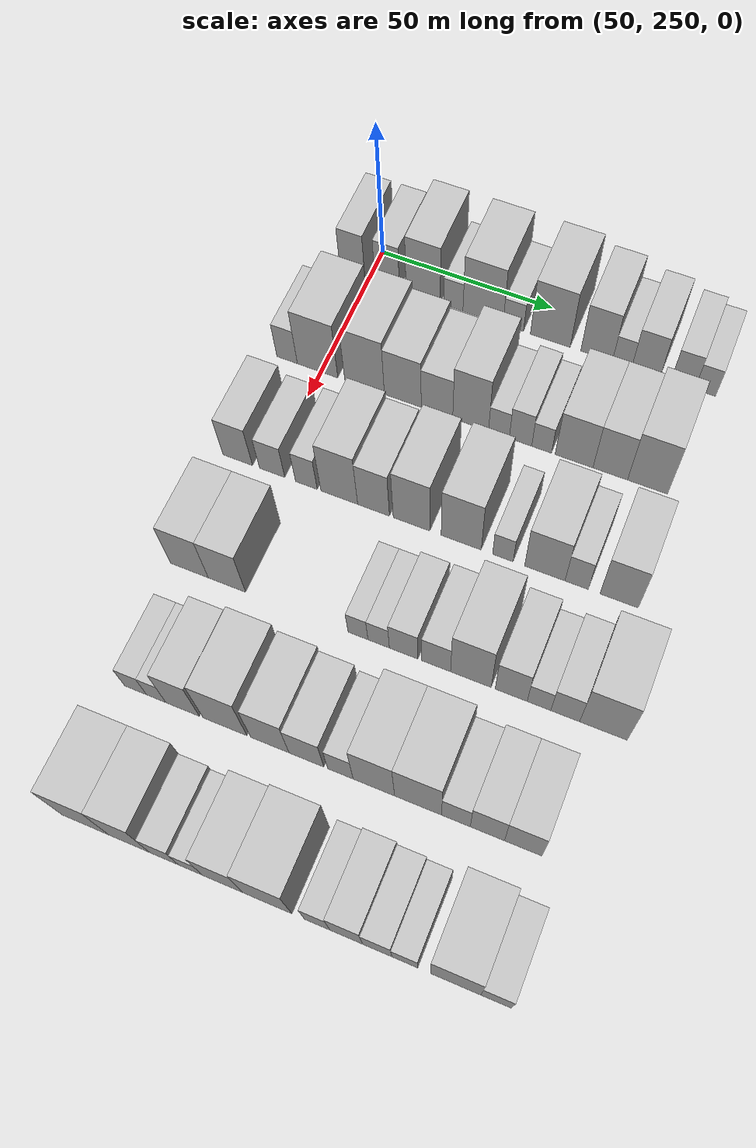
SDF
<sdf version="1.6">
 <world name="default">
  <model name="building_83">
   <static>1</static>
   <pose>50.0000 245.1060 0 0.000000 0.000000 0.000000</pose>
   <link name="link">
    <pose>0 0 9.00 0 0 0</pose>
    <collision name="collision"><geometry><box><size>20.0000 7.3986 18.0000</size></box></geometry></collision>
    <visual name="visual">
     <cast_shadows>0</cast_shadows>
     <geometry><box><size>20.0000 7.3986 18.0000</size></box></geometry>
     <material>
      <script>
       <uri>model://HANNAS_wall/materials/scripts</uri>
       <uri>model://HANNAS_wall/materials/textures</uri>
       <name>vrc/HANNAS_wall</name>
      </script>
     </material>
    </visual>
   </link>
  </model>
  <model name="building_84">
   <static>1</static>
   <pose>50.0000 255.4422 0 0.000000 0.000000 0.000000</pose>
   <link name="link">
    <pose>0 0 9.00 0 0 0</pose>
    <collision name="collision"><geometry><box><size>20.0000 7.2738 18.0000</size></box></geometry></collision>
    <visual name="visual">
     <cast_shadows>0</cast_shadows>
     <geometry><box><size>20.0000 7.2738 18.0000</size></box></geometry>
     <material>
      <script>
       <uri>model://HANNAS_wall/materials/scripts</uri>
       <uri>model://HANNAS_wall/materials/textures</uri>
       <name>vrc/HANNAS_wall</name>
      </script>
     </material>
    </visual>
   </link>
  </model>
  <model name="building_85">
   <static>1</static>
   <pose>50.0000 266.0842 0 0.000000 0.000000 0.000000</pose>
   <link name="link">
    <pose>0 0 12.00 0 0 0</pose>
    <collision name="collision"><geometry><box><size>20.0000 10.0101 24.0000</size></box></geometry></collision>
    <visual name="visual">
     <cast_shadows>0</cast_shadows>
     <geometry><box><size>20.0000 10.0101 24.0000</size></box></geometry>
     <material>
      <script>
       <uri>model://HANNAS_wall/materials/scripts</uri>
       <uri>model://HANNAS_wall/materials/textures</uri>
       <name>vrc/HANNAS_wall</name>
      </script>
     </material>
    </visual>
   </link>
  </model>
  <model name="building_86">
   <static>1</static>
   <pose>50.0000 274.9110 0 0.000000 0.000000 0.000000</pose>
   <link name="link">
    <pose>0 0 6.00 0 0 0</pose>
    <collision name="collision"><geometry><box><size>20.0000 5.6434 12.0000</size></box></geometry></collision>
    <visual name="visual">
     <cast_shadows>0</cast_shadows>
     <geometry><box><size>20.0000 5.6434 12.0000</size></box></geometry>
     <material>
      <script>
       <uri>model://HANNAS_wall/materials/scripts</uri>
       <uri>model://HANNAS_wall/materials/textures</uri>
       <name>vrc/HANNAS_wall</name>
      </script>
     </material>
    </visual>
   </link>
  </model>
  <model name="building_87">
   <static>1</static>
   <pose>50.0000 283.5429 0 0.000000 0.000000 0.000000</pose>
   <link name="link">
    <pose>0 0 12.00 0 0 0</pose>
    <collision name="collision"><geometry><box><size>20.0000 11.6204 24.0000</size></box></geometry></collision>
    <visual name="visual">
     <cast_shadows>0</cast_shadows>
     <geometry><box><size>20.0000 11.6204 24.0000</size></box></geometry>
     <material>
      <script>
       <uri>model://HANNAS_wall/materials/scripts</uri>
       <uri>model://HANNAS_wall/materials/textures</uri>
       <name>vrc/HANNAS_wall</name>
      </script>
     </material>
    </visual>
   </link>
  </model>
  <model name="building_88">
   <static>1</static>
   <pose>50.0000 292.2822 0 0.000000 0.000000 0.000000</pose>
   <link name="link">
    <pose>0 0 6.00 0 0 0</pose>
    <collision name="collision"><geometry><box><size>20.0000 5.8582 12.0000</size></box></geometry></collision>
    <visual name="visual">
     <cast_shadows>0</cast_shadows>
     <geometry><box><size>20.0000 5.8582 12.0000</size></box></geometry>
     <material>
      <script>
       <uri>model://HANNAS_wall/materials/scripts</uri>
       <uri>model://HANNAS_wall/materials/textures</uri>
       <name>vrc/HANNAS_wall</name>
      </script>
     </material>
    </visual>
   </link>
  </model>
  <model name="building_89">
   <static>1</static>
   <pose>50.0000 302.8654 0 0.000000 0.000000 0.000000</pose>
   <link name="link">
    <pose>0 0 12.00 0 0 0</pose>
    <collision name="collision"><geometry><box><size>20.0000 11.3082 24.0000</size></box></geometry></collision>
    <visual name="visual">
     <cast_shadows>0</cast_shadows>
     <geometry><box><size>20.0000 11.3082 24.0000</size></box></geometry>
     <material>
      <script>
       <uri>model://HANNAS_wall/materials/scripts</uri>
       <uri>model://HANNAS_wall/materials/textures</uri>
       <name>vrc/HANNAS_wall</name>
      </script>
     </material>
    </visual>
   </link>
  </model>
  <model name="building_90">
   <static>1</static>
   <pose>50.0000 315.9398 0 0.000000 0.000000 0.000000</pose>
   <link name="link">
    <pose>0 0 10.50 0 0 0</pose>
    <collision name="collision"><geometry><box><size>20.0000 8.8406 21.0000</size></box></geometry></collision>
    <visual name="visual">
     <cast_shadows>0</cast_shadows>
     <geometry><box><size>20.0000 8.8406 21.0000</size></box></geometry>
     <material>
      <script>
       <uri>model://HANNAS_wall/materials/scripts</uri>
       <uri>model://HANNAS_wall/materials/textures</uri>
       <name>vrc/HANNAS_wall</name>
      </script>
     </material>
    </visual>
   </link>
  </model>
  <model name="building_91">
   <static>1</static>
   <pose>50.0000 323.0412 0 0.000000 0.000000 0.000000</pose>
   <link name="link">
    <pose>0 0 6.00 0 0 0</pose>
    <collision name="collision"><geometry><box><size>20.0000 5.3624 12.0000</size></box></geometry></collision>
    <visual name="visual">
     <cast_shadows>0</cast_shadows>
     <geometry><box><size>20.0000 5.3624 12.0000</size></box></geometry>
     <material>
      <script>
       <uri>model://HANNAS_wall/materials/scripts</uri>
       <uri>model://HANNAS_wall/materials/textures</uri>
       <name>vrc/HANNAS_wall</name>
      </script>
     </material>
    </visual>
   </link>
  </model>
  <model name="building_92">
   <static>1</static>
   <pose>50.0000 329.6583 0 0.000000 0.000000 0.000000</pose>
   <link name="link">
    <pose>0 0 9.00 0 0 0</pose>
    <collision name="collision"><geometry><box><size>20.0000 7.8718 18.0000</size></box></geometry></collision>
    <visual name="visual">
     <cast_shadows>0</cast_shadows>
     <geometry><box><size>20.0000 7.8718 18.0000</size></box></geometry>
     <material>
      <script>
       <uri>model://HANNAS_wall/materials/scripts</uri>
       <uri>model://HANNAS_wall/materials/textures</uri>
       <name>vrc/HANNAS_wall</name>
      </script>
     </material>
    </visual>
   </link>
  </model>
  <model name="building_93">
   <static>1</static>
   <pose>50.0000 339.8767 0 0.000000 0.000000 0.000000</pose>
   <link name="link">
    <pose>0 0 7.50 0 0 0</pose>
    <collision name="collision"><geometry><box><size>20.0000 6.5649 15.0000</size></box></geometry></collision>
    <visual name="visual">
     <cast_shadows>0</cast_shadows>
     <geometry><box><size>20.0000 6.5649 15.0000</size></box></geometry>
     <material>
      <script>
       <uri>model://HANNAS_wall/materials/scripts</uri>
       <uri>model://HANNAS_wall/materials/textures</uri>
       <name>vrc/HANNAS_wall</name>
      </script>
     </material>
    </visual>
   </link>
  </model>
  <model name="building_94">
   <static>1</static>
   <pose>50.0000 345.9896 0 0.000000 0.000000 0.000000</pose>
   <link name="link">
    <pose>0 0 6.00 0 0 0</pose>
    <collision name="collision"><geometry><box><size>20.0000 5.6608 12.0000</size></box></geometry></collision>
    <visual name="visual">
     <cast_shadows>0</cast_shadows>
     <geometry><box><size>20.0000 5.6608 12.0000</size></box></geometry>
     <material>
      <script>
       <uri>model://HANNAS_wall/materials/scripts</uri>
       <uri>model://HANNAS_wall/materials/textures</uri>
       <name>vrc/HANNAS_wall</name>
      </script>
     </material>
    </visual>
   </link>
  </model>
  <model name="building_200">
   <static>1</static>
   <pose>82.0000 240.1224 0 0.000000 0.000000 0.000000</pose>
   <link name="link">
    <pose>0 0 7.50 0 0 0</pose>
    <collision name="collision"><geometry><box><size>20.0000 6.0028 15.0000</size></box></geometry></collision>
    <visual name="visual">
     <cast_shadows>0</cast_shadows>
     <geometry><box><size>20.0000 6.0028 15.0000</size></box></geometry>
     <material>
      <script>
       <uri>model://HANNAS_wall/materials/scripts</uri>
       <uri>model://HANNAS_wall/materials/textures</uri>
       <name>vrc/HANNAS_wall</name>
      </script>
     </material>
    </visual>
   </link>
  </model>
  <model name="building_201">
   <static>1</static>
   <pose>82.0000 248.9840 0 0.000000 0.000000 0.000000</pose>
   <link name="link">
    <pose>0 0 12.00 0 0 0</pose>
    <collision name="collision"><geometry><box><size>20.0000 11.7205 24.0000</size></box></geometry></collision>
    <visual name="visual">
     <cast_shadows>0</cast_shadows>
     <geometry><box><size>20.0000 11.7205 24.0000</size></box></geometry>
     <material>
      <script>
       <uri>model://HANNAS_wall/materials/scripts</uri>
       <uri>model://HANNAS_wall/materials/textures</uri>
       <name>vrc/HANNAS_wall</name>
      </script>
     </material>
    </visual>
   </link>
  </model>
  <model name="building_202">
   <static>1</static>
   <pose>82.0000 262.5064 0 0.000000 0.000000 0.000000</pose>
   <link name="link">
    <pose>0 0 12.00 0 0 0</pose>
    <collision name="collision"><geometry><box><size>20.0000 11.3243 24.0000</size></box></geometry></collision>
    <visual name="visual">
     <cast_shadows>0</cast_shadows>
     <geometry><box><size>20.0000 11.3243 24.0000</size></box></geometry>
     <material>
      <script>
       <uri>model://HANNAS_wall/materials/scripts</uri>
       <uri>model://HANNAS_wall/materials/textures</uri>
       <name>vrc/HANNAS_wall</name>
      </script>
     </material>
    </visual>
   </link>
  </model>
  <model name="building_203">
   <static>1</static>
   <pose>82.0000 273.3905 0 0.000000 0.000000 0.000000</pose>
   <link name="link">
    <pose>0 0 10.50 0 0 0</pose>
    <collision name="collision"><geometry><box><size>20.0000 10.4439 21.0000</size></box></geometry></collision>
    <visual name="visual">
     <cast_shadows>0</cast_shadows>
     <geometry><box><size>20.0000 10.4439 21.0000</size></box></geometry>
     <material>
      <script>
       <uri>model://HANNAS_wall/materials/scripts</uri>
       <uri>model://HANNAS_wall/materials/textures</uri>
       <name>vrc/HANNAS_wall</name>
      </script>
     </material>
    </visual>
   </link>
  </model>
  <model name="building_204">
   <static>1</static>
   <pose>82.0000 283.0286 0 0.000000 0.000000 0.000000</pose>
   <link name="link">
    <pose>0 0 9.00 0 0 0</pose>
    <collision name="collision"><geometry><box><size>20.0000 8.8321 18.0000</size></box></geometry></collision>
    <visual name="visual">
     <cast_shadows>0</cast_shadows>
     <geometry><box><size>20.0000 8.8321 18.0000</size></box></geometry>
     <material>
      <script>
       <uri>model://HANNAS_wall/materials/scripts</uri>
       <uri>model://HANNAS_wall/materials/textures</uri>
       <name>vrc/HANNAS_wall</name>
      </script>
     </material>
    </visual>
   </link>
  </model>
  <model name="building_205">
   <static>1</static>
   <pose>82.0000 292.4113 0 0.000000 0.000000 0.000000</pose>
   <link name="link">
    <pose>0 0 12.00 0 0 0</pose>
    <collision name="collision"><geometry><box><size>20.0000 9.9333 24.0000</size></box></geometry></collision>
    <visual name="visual">
     <cast_shadows>0</cast_shadows>
     <geometry><box><size>20.0000 9.9333 24.0000</size></box></geometry>
     <material>
      <script>
       <uri>model://HANNAS_wall/materials/scripts</uri>
       <uri>model://HANNAS_wall/materials/textures</uri>
       <name>vrc/HANNAS_wall</name>
      </script>
     </material>
    </visual>
   </link>
  </model>
  <model name="building_206">
   <static>1</static>
   <pose>82.0000 300.2350 0 0.000000 0.000000 0.000000</pose>
   <link name="link">
    <pose>0 0 6.00 0 0 0</pose>
    <collision name="collision"><geometry><box><size>20.0000 5.7140 12.0000</size></box></geometry></collision>
    <visual name="visual">
     <cast_shadows>0</cast_shadows>
     <geometry><box><size>20.0000 5.7140 12.0000</size></box></geometry>
     <material>
      <script>
       <uri>model://HANNAS_wall/materials/scripts</uri>
       <uri>model://HANNAS_wall/materials/textures</uri>
       <name>vrc/HANNAS_wall</name>
      </script>
     </material>
    </visual>
   </link>
  </model>
  <model name="building_207">
   <static>1</static>
   <pose>82.0000 306.1784 0 0.000000 0.000000 0.000000</pose>
   <link name="link">
    <pose>0 0 7.50 0 0 0</pose>
    <collision name="collision"><geometry><box><size>20.0000 6.1729 15.0000</size></box></geometry></collision>
    <visual name="visual">
     <cast_shadows>0</cast_shadows>
     <geometry><box><size>20.0000 6.1729 15.0000</size></box></geometry>
     <material>
      <script>
       <uri>model://HANNAS_wall/materials/scripts</uri>
       <uri>model://HANNAS_wall/materials/textures</uri>
       <name>vrc/HANNAS_wall</name>
      </script>
     </material>
    </visual>
   </link>
  </model>
  <model name="building_208">
   <static>1</static>
   <pose>82.0000 311.9636 0 0.000000 0.000000 0.000000</pose>
   <link name="link">
    <pose>0 0 6.00 0 0 0</pose>
    <collision name="collision"><geometry><box><size>20.0000 5.3974 12.0000</size></box></geometry></collision>
    <visual name="visual">
     <cast_shadows>0</cast_shadows>
     <geometry><box><size>20.0000 5.3974 12.0000</size></box></geometry>
     <material>
      <script>
       <uri>model://HANNAS_wall/materials/scripts</uri>
       <uri>model://HANNAS_wall/materials/textures</uri>
       <name>vrc/HANNAS_wall</name>
      </script>
     </material>
    </visual>
   </link>
  </model>
  <model name="building_209">
   <static>1</static>
   <pose>82.0000 320.7685 0 0.000000 0.000000 0.000000</pose>
   <link name="link">
    <pose>0 0 10.50 0 0 0</pose>
    <collision name="collision"><geometry><box><size>20.0000 10.2124 21.0000</size></box></geometry></collision>
    <visual name="visual">
     <cast_shadows>0</cast_shadows>
     <geometry><box><size>20.0000 10.2124 21.0000</size></box></geometry>
     <material>
      <script>
       <uri>model://HANNAS_wall/materials/scripts</uri>
       <uri>model://HANNAS_wall/materials/textures</uri>
       <name>vrc/HANNAS_wall</name>
      </script>
     </material>
    </visual>
   </link>
  </model>
  <model name="building_210">
   <static>1</static>
   <pose>82.0000 330.5029 0 0.000000 0.000000 0.000000</pose>
   <link name="link">
    <pose>0 0 10.50 0 0 0</pose>
    <collision name="collision"><geometry><box><size>20.0000 9.2563 21.0000</size></box></geometry></collision>
    <visual name="visual">
     <cast_shadows>0</cast_shadows>
     <geometry><box><size>20.0000 9.2563 21.0000</size></box></geometry>
     <material>
      <script>
       <uri>model://HANNAS_wall/materials/scripts</uri>
       <uri>model://HANNAS_wall/materials/textures</uri>
       <name>vrc/HANNAS_wall</name>
      </script>
     </material>
    </visual>
   </link>
  </model>
  <model name="building_211">
   <static>1</static>
   <pose>82.0000 340.4274 0 0.000000 0.000000 0.000000</pose>
   <link name="link">
    <pose>0 0 12.00 0 0 0</pose>
    <collision name="collision"><geometry><box><size>20.0000 10.5927 24.0000</size></box></geometry></collision>
    <visual name="visual">
     <cast_shadows>0</cast_shadows>
     <geometry><box><size>20.0000 10.5927 24.0000</size></box></geometry>
     <material>
      <script>
       <uri>model://HANNAS_wall/materials/scripts</uri>
       <uri>model://HANNAS_wall/materials/textures</uri>
       <name>vrc/HANNAS_wall</name>
      </script>
     </material>
    </visual>
   </link>
  </model>
  <model name="building_319">
   <static>1</static>
   <pose>114.0000 241.0379 0 0.000000 0.000000 0.000000</pose>
   <link name="link">
    <pose>0 0 9.00 0 0 0</pose>
    <collision name="collision"><geometry><box><size>20.0000 8.3700 18.0000</size></box></geometry></collision>
    <visual name="visual">
     <cast_shadows>0</cast_shadows>
     <geometry><box><size>20.0000 8.3700 18.0000</size></box></geometry>
     <material>
      <script>
       <uri>model://HANNAS_wall/materials/scripts</uri>
       <uri>model://HANNAS_wall/materials/textures</uri>
       <name>vrc/HANNAS_wall</name>
      </script>
     </material>
    </visual>
   </link>
  </model>
  <model name="building_320">
   <static>1</static>
   <pose>114.0000 250.7599 0 0.000000 0.000000 0.000000</pose>
   <link name="link">
    <pose>0 0 7.50 0 0 0</pose>
    <collision name="collision"><geometry><box><size>20.0000 7.0739 15.0000</size></box></geometry></collision>
    <visual name="visual">
     <cast_shadows>0</cast_shadows>
     <geometry><box><size>20.0000 7.0739 15.0000</size></box></geometry>
     <material>
      <script>
       <uri>model://HANNAS_wall/materials/scripts</uri>
       <uri>model://HANNAS_wall/materials/textures</uri>
       <name>vrc/HANNAS_wall</name>
      </script>
     </material>
    </visual>
   </link>
  </model>
  <model name="building_321">
   <static>1</static>
   <pose>114.0000 260.3133 0 0.000000 0.000000 0.000000</pose>
   <link name="link">
    <pose>0 0 7.50 0 0 0</pose>
    <collision name="collision"><geometry><box><size>20.0000 6.0330 15.0000</size></box></geometry></collision>
    <visual name="visual">
     <cast_shadows>0</cast_shadows>
     <geometry><box><size>20.0000 6.0330 15.0000</size></box></geometry>
     <material>
      <script>
       <uri>model://HANNAS_wall/materials/scripts</uri>
       <uri>model://HANNAS_wall/materials/textures</uri>
       <name>vrc/HANNAS_wall</name>
      </script>
     </material>
    </visual>
   </link>
  </model>
  <model name="building_322">
   <static>1</static>
   <pose>114.0000 269.3907 0 0.000000 0.000000 0.000000</pose>
   <link name="link">
    <pose>0 0 12.00 0 0 0</pose>
    <collision name="collision"><geometry><box><size>20.0000 10.1217 24.0000</size></box></geometry></collision>
    <visual name="visual">
     <cast_shadows>0</cast_shadows>
     <geometry><box><size>20.0000 10.1217 24.0000</size></box></geometry>
     <material>
      <script>
       <uri>model://HANNAS_wall/materials/scripts</uri>
       <uri>model://HANNAS_wall/materials/textures</uri>
       <name>vrc/HANNAS_wall</name>
      </script>
     </material>
    </visual>
   </link>
  </model>
  <model name="building_323">
   <static>1</static>
   <pose>114.0000 278.7873 0 0.000000 0.000000 0.000000</pose>
   <link name="link">
    <pose>0 0 10.50 0 0 0</pose>
    <collision name="collision"><geometry><box><size>20.0000 8.6716 21.0000</size></box></geometry></collision>
    <visual name="visual">
     <cast_shadows>0</cast_shadows>
     <geometry><box><size>20.0000 8.6716 21.0000</size></box></geometry>
     <material>
      <script>
       <uri>model://HANNAS_wall/materials/scripts</uri>
       <uri>model://HANNAS_wall/materials/textures</uri>
       <name>vrc/HANNAS_wall</name>
      </script>
     </material>
    </visual>
   </link>
  </model>
  <model name="building_324">
   <static>1</static>
   <pose>114.0000 289.0781 0 0.000000 0.000000 0.000000</pose>
   <link name="link">
    <pose>0 0 12.00 0 0 0</pose>
    <collision name="collision"><geometry><box><size>20.0000 9.9099 24.0000</size></box></geometry></collision>
    <visual name="visual">
     <cast_shadows>0</cast_shadows>
     <geometry><box><size>20.0000 9.9099 24.0000</size></box></geometry>
     <material>
      <script>
       <uri>model://HANNAS_wall/materials/scripts</uri>
       <uri>model://HANNAS_wall/materials/textures</uri>
       <name>vrc/HANNAS_wall</name>
      </script>
     </material>
    </visual>
   </link>
  </model>
  <model name="building_325">
   <static>1</static>
   <pose>114.0000 302.3647 0 0.000000 0.000000 0.000000</pose>
   <link name="link">
    <pose>0 0 12.00 0 0 0</pose>
    <collision name="collision"><geometry><box><size>20.0000 10.6635 24.0000</size></box></geometry></collision>
    <visual name="visual">
     <cast_shadows>0</cast_shadows>
     <geometry><box><size>20.0000 10.6635 24.0000</size></box></geometry>
     <material>
      <script>
       <uri>model://HANNAS_wall/materials/scripts</uri>
       <uri>model://HANNAS_wall/materials/textures</uri>
       <name>vrc/HANNAS_wall</name>
      </script>
     </material>
    </visual>
   </link>
  </model>
  <model name="building_326">
   <static>1</static>
   <pose>114.0000 313.3989 0 0.000000 0.000000 0.000000</pose>
   <link name="link">
    <pose>0 0 6.00 0 0 0</pose>
    <collision name="collision"><geometry><box><size>20.0000 5.4048 12.0000</size></box></geometry></collision>
    <visual name="visual">
     <cast_shadows>0</cast_shadows>
     <geometry><box><size>20.0000 5.4048 12.0000</size></box></geometry>
     <material>
      <script>
       <uri>model://HANNAS_wall/materials/scripts</uri>
       <uri>model://HANNAS_wall/materials/textures</uri>
       <name>vrc/HANNAS_wall</name>
      </script>
     </material>
    </visual>
   </link>
  </model>
  <model name="building_327">
   <static>1</static>
   <pose>114.0000 324.3505 0 0.000000 0.000000 0.000000</pose>
   <link name="link">
    <pose>0 0 10.50 0 0 0</pose>
    <collision name="collision"><geometry><box><size>20.0000 10.4986 21.0000</size></box></geometry></collision>
    <visual name="visual">
     <cast_shadows>0</cast_shadows>
     <geometry><box><size>20.0000 10.4986 21.0000</size></box></geometry>
     <material>
      <script>
       <uri>model://HANNAS_wall/materials/scripts</uri>
       <uri>model://HANNAS_wall/materials/textures</uri>
       <name>vrc/HANNAS_wall</name>
      </script>
     </material>
    </visual>
   </link>
  </model>
  <model name="building_328">
   <static>1</static>
   <pose>114.0000 332.6007 0 0.000000 0.000000 0.000000</pose>
   <link name="link">
    <pose>0 0 7.50 0 0 0</pose>
    <collision name="collision"><geometry><box><size>20.0000 6.0018 15.0000</size></box></geometry></collision>
    <visual name="visual">
     <cast_shadows>0</cast_shadows>
     <geometry><box><size>20.0000 6.0018 15.0000</size></box></geometry>
     <material>
      <script>
       <uri>model://HANNAS_wall/materials/scripts</uri>
       <uri>model://HANNAS_wall/materials/textures</uri>
       <name>vrc/HANNAS_wall</name>
      </script>
     </material>
    </visual>
   </link>
  </model>
  <model name="building_329">
   <static>1</static>
   <pose>114.0000 343.4844 0 0.000000 0.000000 0.000000</pose>
   <link name="link">
    <pose>0 0 10.50 0 0 0</pose>
    <collision name="collision"><geometry><box><size>20.0000 9.7656 21.0000</size></box></geometry></collision>
    <visual name="visual">
     <cast_shadows>0</cast_shadows>
     <geometry><box><size>20.0000 9.7656 21.0000</size></box></geometry>
     <material>
      <script>
       <uri>model://HANNAS_wall/materials/scripts</uri>
       <uri>model://HANNAS_wall/materials/textures</uri>
       <name>vrc/HANNAS_wall</name>
      </script>
     </material>
    </visual>
   </link>
  </model>
  <model name="building_434">
   <static>1</static>
   <pose>146.0000 243.4243 0 0.000000 0.000000 0.000000</pose>
   <link name="link">
    <pose>0 0 10.50 0 0 0</pose>
    <collision name="collision"><geometry><box><size>20.0000 10.2701 21.0000</size></box></geometry></collision>
    <visual name="visual">
     <cast_shadows>0</cast_shadows>
     <geometry><box><size>20.0000 10.2701 21.0000</size></box></geometry>
     <material>
      <script>
       <uri>model://HANNAS_wall/materials/scripts</uri>
       <uri>model://HANNAS_wall/materials/textures</uri>
       <name>vrc/HANNAS_wall</name>
      </script>
     </material>
    </visual>
   </link>
  </model>
  <model name="building_435">
   <static>1</static>
   <pose>146.0000 253.6127 0 0.000000 0.000000 0.000000</pose>
   <link name="link">
    <pose>0 0 10.50 0 0 0</pose>
    <collision name="collision"><geometry><box><size>20.0000 10.1066 21.0000</size></box></geometry></collision>
    <visual name="visual">
     <cast_shadows>0</cast_shadows>
     <geometry><box><size>20.0000 10.1066 21.0000</size></box></geometry>
     <material>
      <script>
       <uri>model://HANNAS_wall/materials/scripts</uri>
       <uri>model://HANNAS_wall/materials/textures</uri>
       <name>vrc/HANNAS_wall</name>
      </script>
     </material>
    </visual>
   </link>
  </model>
  <model name="building_436">
   <static>1</static>
   <pose>146.0000 288.4237 0 0.000000 0.000000 0.000000</pose>
   <link name="link">
    <pose>0 0 6.00 0 0 0</pose>
    <collision name="collision"><geometry><box><size>20.0000 5.1718 12.0000</size></box></geometry></collision>
    <visual name="visual">
     <cast_shadows>0</cast_shadows>
     <geometry><box><size>20.0000 5.1718 12.0000</size></box></geometry>
     <material>
      <script>
       <uri>model://HANNAS_wall/materials/scripts</uri>
       <uri>model://HANNAS_wall/materials/textures</uri>
       <name>vrc/HANNAS_wall</name>
      </script>
     </material>
    </visual>
   </link>
  </model>
  <model name="building_437">
   <static>1</static>
   <pose>146.0000 293.7889 0 0.000000 0.000000 0.000000</pose>
   <link name="link">
    <pose>0 0 6.00 0 0 0</pose>
    <collision name="collision"><geometry><box><size>20.0000 5.5587 12.0000</size></box></geometry></collision>
    <visual name="visual">
     <cast_shadows>0</cast_shadows>
     <geometry><box><size>20.0000 5.5587 12.0000</size></box></geometry>
     <material>
      <script>
       <uri>model://HANNAS_wall/materials/scripts</uri>
       <uri>model://HANNAS_wall/materials/textures</uri>
       <name>vrc/HANNAS_wall</name>
      </script>
     </material>
    </visual>
   </link>
  </model>
  <model name="building_438">
   <static>1</static>
   <pose>146.0000 300.2440 0 0.000000 0.000000 0.000000</pose>
   <link name="link">
    <pose>0 0 7.50 0 0 0</pose>
    <collision name="collision"><geometry><box><size>20.0000 7.3515 15.0000</size></box></geometry></collision>
    <visual name="visual">
     <cast_shadows>0</cast_shadows>
     <geometry><box><size>20.0000 7.3515 15.0000</size></box></geometry>
     <material>
      <script>
       <uri>model://HANNAS_wall/materials/scripts</uri>
       <uri>model://HANNAS_wall/materials/textures</uri>
       <name>vrc/HANNAS_wall</name>
      </script>
     </material>
    </visual>
   </link>
  </model>
  <model name="building_439">
   <static>1</static>
   <pose>146.0000 308.5822 0 0.000000 0.000000 0.000000</pose>
   <link name="link">
    <pose>0 0 7.50 0 0 0</pose>
    <collision name="collision"><geometry><box><size>20.0000 7.3250 15.0000</size></box></geometry></collision>
    <visual name="visual">
     <cast_shadows>0</cast_shadows>
     <geometry><box><size>20.0000 7.3250 15.0000</size></box></geometry>
     <material>
      <script>
       <uri>model://HANNAS_wall/materials/scripts</uri>
       <uri>model://HANNAS_wall/materials/textures</uri>
       <name>vrc/HANNAS_wall</name>
      </script>
     </material>
    </visual>
   </link>
  </model>
  <model name="building_440">
   <static>1</static>
   <pose>146.0000 317.3871 0 0.000000 0.000000 0.000000</pose>
   <link name="link">
    <pose>0 0 12.00 0 0 0</pose>
    <collision name="collision"><geometry><box><size>20.0000 10.2847 24.0000</size></box></geometry></collision>
    <visual name="visual">
     <cast_shadows>0</cast_shadows>
     <geometry><box><size>20.0000 10.2847 24.0000</size></box></geometry>
     <material>
      <script>
       <uri>model://HANNAS_wall/materials/scripts</uri>
       <uri>model://HANNAS_wall/materials/textures</uri>
       <name>vrc/HANNAS_wall</name>
      </script>
     </material>
    </visual>
   </link>
  </model>
  <model name="building_441">
   <static>1</static>
   <pose>146.0000 327.5267 0 0.000000 0.000000 0.000000</pose>
   <link name="link">
    <pose>0 0 9.00 0 0 0</pose>
    <collision name="collision"><geometry><box><size>20.0000 7.9946 18.0000</size></box></geometry></collision>
    <visual name="visual">
     <cast_shadows>0</cast_shadows>
     <geometry><box><size>20.0000 7.9946 18.0000</size></box></geometry>
     <material>
      <script>
       <uri>model://HANNAS_wall/materials/scripts</uri>
       <uri>model://HANNAS_wall/materials/textures</uri>
       <name>vrc/HANNAS_wall</name>
      </script>
     </material>
    </visual>
   </link>
  </model>
  <model name="building_442">
   <static>1</static>
   <pose>146.0000 334.4402 0 0.000000 0.000000 0.000000</pose>
   <link name="link">
    <pose>0 0 6.00 0 0 0</pose>
    <collision name="collision"><geometry><box><size>20.0000 5.8324 12.0000</size></box></geometry></collision>
    <visual name="visual">
     <cast_shadows>0</cast_shadows>
     <geometry><box><size>20.0000 5.8324 12.0000</size></box></geometry>
     <material>
      <script>
       <uri>model://HANNAS_wall/materials/scripts</uri>
       <uri>model://HANNAS_wall/materials/textures</uri>
       <name>vrc/HANNAS_wall</name>
      </script>
     </material>
    </visual>
   </link>
  </model>
  <model name="building_443">
   <static>1</static>
   <pose>146.0000 340.9130 0 0.000000 0.000000 0.000000</pose>
   <link name="link">
    <pose>0 0 7.50 0 0 0</pose>
    <collision name="collision"><geometry><box><size>20.0000 7.1130 15.0000</size></box></geometry></collision>
    <visual name="visual">
     <cast_shadows>0</cast_shadows>
     <geometry><box><size>20.0000 7.1130 15.0000</size></box></geometry>
     <material>
      <script>
       <uri>model://HANNAS_wall/materials/scripts</uri>
       <uri>model://HANNAS_wall/materials/textures</uri>
       <name>vrc/HANNAS_wall</name>
      </script>
     </material>
    </visual>
   </link>
  </model>
  <model name="building_444">
   <static>1</static>
   <pose>146.0000 350.2729 0 0.000000 0.000000 0.000000</pose>
   <link name="link">
    <pose>0 0 12.00 0 0 0</pose>
    <collision name="collision"><geometry><box><size>20.0000 11.6070 24.0000</size></box></geometry></collision>
    <visual name="visual">
     <cast_shadows>0</cast_shadows>
     <geometry><box><size>20.0000 11.6070 24.0000</size></box></geometry>
     <material>
      <script>
       <uri>model://HANNAS_wall/materials/scripts</uri>
       <uri>model://HANNAS_wall/materials/textures</uri>
       <name>vrc/HANNAS_wall</name>
      </script>
     </material>
    </visual>
   </link>
  </model>
  <model name="building_553">
   <static>1</static>
   <pose>178.0000 245.4463 0 0.000000 0.000000 0.000000</pose>
   <link name="link">
    <pose>0 0 6.00 0 0 0</pose>
    <collision name="collision"><geometry><box><size>20.0000 5.7776 12.0000</size></box></geometry></collision>
    <visual name="visual">
     <cast_shadows>0</cast_shadows>
     <geometry><box><size>20.0000 5.7776 12.0000</size></box></geometry>
     <material>
      <script>
       <uri>model://HANNAS_wall/materials/scripts</uri>
       <uri>model://HANNAS_wall/materials/textures</uri>
       <name>vrc/HANNAS_wall</name>
      </script>
     </material>
    </visual>
   </link>
  </model>
  <model name="building_554">
   <static>1</static>
   <pose>178.0000 250.8661 0 0.000000 0.000000 0.000000</pose>
   <link name="link">
    <pose>0 0 6.00 0 0 0</pose>
    <collision name="collision"><geometry><box><size>20.0000 5.0620 12.0000</size></box></geometry></collision>
    <visual name="visual">
     <cast_shadows>0</cast_shadows>
     <geometry><box><size>20.0000 5.0620 12.0000</size></box></geometry>
     <material>
      <script>
       <uri>model://HANNAS_wall/materials/scripts</uri>
       <uri>model://HANNAS_wall/materials/textures</uri>
       <name>vrc/HANNAS_wall</name>
      </script>
     </material>
    </visual>
   </link>
  </model>
  <model name="building_555">
   <static>1</static>
   <pose>178.0000 257.7657 0 0.000000 0.000000 0.000000</pose>
   <link name="link">
    <pose>0 0 10.50 0 0 0</pose>
    <collision name="collision"><geometry><box><size>20.0000 8.7372 21.0000</size></box></geometry></collision>
    <visual name="visual">
     <cast_shadows>0</cast_shadows>
     <geometry><box><size>20.0000 8.7372 21.0000</size></box></geometry>
     <material>
      <script>
       <uri>model://HANNAS_wall/materials/scripts</uri>
       <uri>model://HANNAS_wall/materials/textures</uri>
       <name>vrc/HANNAS_wall</name>
      </script>
     </material>
    </visual>
   </link>
  </model>
  <model name="building_556">
   <static>1</static>
   <pose>178.0000 268.7479 0 0.000000 0.000000 0.000000</pose>
   <link name="link">
    <pose>0 0 12.00 0 0 0</pose>
    <collision name="collision"><geometry><box><size>20.0000 11.2272 24.0000</size></box></geometry></collision>
    <visual name="visual">
     <cast_shadows>0</cast_shadows>
     <geometry><box><size>20.0000 11.2272 24.0000</size></box></geometry>
     <material>
      <script>
       <uri>model://HANNAS_wall/materials/scripts</uri>
       <uri>model://HANNAS_wall/materials/textures</uri>
       <name>vrc/HANNAS_wall</name>
      </script>
     </material>
    </visual>
   </link>
  </model>
  <model name="building_557">
   <static>1</static>
   <pose>178.0000 280.2277 0 0.000000 0.000000 0.000000</pose>
   <link name="link">
    <pose>0 0 10.50 0 0 0</pose>
    <collision name="collision"><geometry><box><size>20.0000 9.7325 21.0000</size></box></geometry></collision>
    <visual name="visual">
     <cast_shadows>0</cast_shadows>
     <geometry><box><size>20.0000 9.7325 21.0000</size></box></geometry>
     <material>
      <script>
       <uri>model://HANNAS_wall/materials/scripts</uri>
       <uri>model://HANNAS_wall/materials/textures</uri>
       <name>vrc/HANNAS_wall</name>
      </script>
     </material>
    </visual>
   </link>
  </model>
  <model name="building_558">
   <static>1</static>
   <pose>178.0000 289.4576 0 0.000000 0.000000 0.000000</pose>
   <link name="link">
    <pose>0 0 9.00 0 0 0</pose>
    <collision name="collision"><geometry><box><size>20.0000 8.7274 18.0000</size></box></geometry></collision>
    <visual name="visual">
     <cast_shadows>0</cast_shadows>
     <geometry><box><size>20.0000 8.7274 18.0000</size></box></geometry>
     <material>
      <script>
       <uri>model://HANNAS_wall/materials/scripts</uri>
       <uri>model://HANNAS_wall/materials/textures</uri>
       <name>vrc/HANNAS_wall</name>
      </script>
     </material>
    </visual>
   </link>
  </model>
  <model name="building_559">
   <static>1</static>
   <pose>178.0000 297.9656 0 0.000000 0.000000 0.000000</pose>
   <link name="link">
    <pose>0 0 7.50 0 0 0</pose>
    <collision name="collision"><geometry><box><size>20.0000 6.2886 15.0000</size></box></geometry></collision>
    <visual name="visual">
     <cast_shadows>0</cast_shadows>
     <geometry><box><size>20.0000 6.2886 15.0000</size></box></geometry>
     <material>
      <script>
       <uri>model://HANNAS_wall/materials/scripts</uri>
       <uri>model://HANNAS_wall/materials/textures</uri>
       <name>vrc/HANNAS_wall</name>
      </script>
     </material>
    </visual>
   </link>
  </model>
  <model name="building_560">
   <static>1</static>
   <pose>178.0000 306.2239 0 0.000000 0.000000 0.000000</pose>
   <link name="link">
    <pose>0 0 12.00 0 0 0</pose>
    <collision name="collision"><geometry><box><size>20.0000 10.2279 24.0000</size></box></geometry></collision>
    <visual name="visual">
     <cast_shadows>0</cast_shadows>
     <geometry><box><size>20.0000 10.2279 24.0000</size></box></geometry>
     <material>
      <script>
       <uri>model://HANNAS_wall/materials/scripts</uri>
       <uri>model://HANNAS_wall/materials/textures</uri>
       <name>vrc/HANNAS_wall</name>
      </script>
     </material>
    </visual>
   </link>
  </model>
  <model name="building_561">
   <static>1</static>
   <pose>178.0000 317.0538 0 0.000000 0.000000 0.000000</pose>
   <link name="link">
    <pose>0 0 12.00 0 0 0</pose>
    <collision name="collision"><geometry><box><size>20.0000 11.4320 24.0000</size></box></geometry></collision>
    <visual name="visual">
     <cast_shadows>0</cast_shadows>
     <geometry><box><size>20.0000 11.4320 24.0000</size></box></geometry>
     <material>
      <script>
       <uri>model://HANNAS_wall/materials/scripts</uri>
       <uri>model://HANNAS_wall/materials/textures</uri>
       <name>vrc/HANNAS_wall</name>
      </script>
     </material>
    </visual>
   </link>
  </model>
  <model name="building_562">
   <static>1</static>
   <pose>178.0000 326.2415 0 0.000000 0.000000 0.000000</pose>
   <link name="link">
    <pose>0 0 7.50 0 0 0</pose>
    <collision name="collision"><geometry><box><size>20.0000 6.9434 15.0000</size></box></geometry></collision>
    <visual name="visual">
     <cast_shadows>0</cast_shadows>
     <geometry><box><size>20.0000 6.9434 15.0000</size></box></geometry>
     <material>
      <script>
       <uri>model://HANNAS_wall/materials/scripts</uri>
       <uri>model://HANNAS_wall/materials/textures</uri>
       <name>vrc/HANNAS_wall</name>
      </script>
     </material>
    </visual>
   </link>
  </model>
  <model name="building_563">
   <static>1</static>
   <pose>178.0000 333.7946 0 0.000000 0.000000 0.000000</pose>
   <link name="link">
    <pose>0 0 9.00 0 0 0</pose>
    <collision name="collision"><geometry><box><size>20.0000 8.1627 18.0000</size></box></geometry></collision>
    <visual name="visual">
     <cast_shadows>0</cast_shadows>
     <geometry><box><size>20.0000 8.1627 18.0000</size></box></geometry>
     <material>
      <script>
       <uri>model://HANNAS_wall/materials/scripts</uri>
       <uri>model://HANNAS_wall/materials/textures</uri>
       <name>vrc/HANNAS_wall</name>
      </script>
     </material>
    </visual>
   </link>
  </model>
  <model name="building_564">
   <static>1</static>
   <pose>178.0000 342.3014 0 0.000000 0.000000 0.000000</pose>
   <link name="link">
    <pose>0 0 9.00 0 0 0</pose>
    <collision name="collision"><geometry><box><size>20.0000 8.8510 18.0000</size></box></geometry></collision>
    <visual name="visual">
     <cast_shadows>0</cast_shadows>
     <geometry><box><size>20.0000 8.8510 18.0000</size></box></geometry>
     <material>
      <script>
       <uri>model://HANNAS_wall/materials/scripts</uri>
       <uri>model://HANNAS_wall/materials/textures</uri>
       <name>vrc/HANNAS_wall</name>
      </script>
     </material>
    </visual>
   </link>
  </model>
  <model name="building_662">
   <static>1</static>
   <pose>210.0000 249.6970 0 0.000000 0.000000 0.000000</pose>
   <link name="link">
    <pose>0 0 12.00 0 0 0</pose>
    <collision name="collision"><geometry><box><size>20.0000 11.8889 24.0000</size></box></geometry></collision>
    <visual name="visual">
     <cast_shadows>0</cast_shadows>
     <geometry><box><size>20.0000 11.8889 24.0000</size></box></geometry>
     <material>
      <script>
       <uri>model://HANNAS_wall/materials/scripts</uri>
       <uri>model://HANNAS_wall/materials/textures</uri>
       <name>vrc/HANNAS_wall</name>
      </script>
     </material>
    </visual>
   </link>
  </model>
  <model name="building_663">
   <static>1</static>
   <pose>210.0000 260.7572 0 0.000000 0.000000 0.000000</pose>
   <link name="link">
    <pose>0 0 12.00 0 0 0</pose>
    <collision name="collision"><geometry><box><size>20.0000 10.2313 24.0000</size></box></geometry></collision>
    <visual name="visual">
     <cast_shadows>0</cast_shadows>
     <geometry><box><size>20.0000 10.2313 24.0000</size></box></geometry>
     <material>
      <script>
       <uri>model://HANNAS_wall/materials/scripts</uri>
       <uri>model://HANNAS_wall/materials/textures</uri>
       <name>vrc/HANNAS_wall</name>
      </script>
     </material>
    </visual>
   </link>
  </model>
  <model name="building_664">
   <static>1</static>
   <pose>210.0000 269.4657 0 0.000000 0.000000 0.000000</pose>
   <link name="link">
    <pose>0 0 7.50 0 0 0</pose>
    <collision name="collision"><geometry><box><size>20.0000 7.1858 15.0000</size></box></geometry></collision>
    <visual name="visual">
     <cast_shadows>0</cast_shadows>
     <geometry><box><size>20.0000 7.1858 15.0000</size></box></geometry>
     <material>
      <script>
       <uri>model://HANNAS_wall/materials/scripts</uri>
       <uri>model://HANNAS_wall/materials/textures</uri>
       <name>vrc/HANNAS_wall</name>
      </script>
     </material>
    </visual>
   </link>
  </model>
  <model name="building_665">
   <static>1</static>
   <pose>210.0000 276.0005 0 0.000000 0.000000 0.000000</pose>
   <link name="link">
    <pose>0 0 6.00 0 0 0</pose>
    <collision name="collision"><geometry><box><size>20.0000 5.8836 12.0000</size></box></geometry></collision>
    <visual name="visual">
     <cast_shadows>0</cast_shadows>
     <geometry><box><size>20.0000 5.8836 12.0000</size></box></geometry>
     <material>
      <script>
       <uri>model://HANNAS_wall/materials/scripts</uri>
       <uri>model://HANNAS_wall/materials/textures</uri>
       <name>vrc/HANNAS_wall</name>
      </script>
     </material>
    </visual>
   </link>
  </model>
  <model name="building_666">
   <static>1</static>
   <pose>210.0000 283.8922 0 0.000000 0.000000 0.000000</pose>
   <link name="link">
    <pose>0 0 10.50 0 0 0</pose>
    <collision name="collision"><geometry><box><size>20.0000 9.8999 21.0000</size></box></geometry></collision>
    <visual name="visual">
     <cast_shadows>0</cast_shadows>
     <geometry><box><size>20.0000 9.8999 21.0000</size></box></geometry>
     <material>
      <script>
       <uri>model://HANNAS_wall/materials/scripts</uri>
       <uri>model://HANNAS_wall/materials/textures</uri>
       <name>vrc/HANNAS_wall</name>
      </script>
     </material>
    </visual>
   </link>
  </model>
  <model name="building_667">
   <static>1</static>
   <pose>210.0000 294.7089 0 0.000000 0.000000 0.000000</pose>
   <link name="link">
    <pose>0 0 12.00 0 0 0</pose>
    <collision name="collision"><geometry><box><size>20.0000 11.7335 24.0000</size></box></geometry></collision>
    <visual name="visual">
     <cast_shadows>0</cast_shadows>
     <geometry><box><size>20.0000 11.7335 24.0000</size></box></geometry>
     <material>
      <script>
       <uri>model://HANNAS_wall/materials/scripts</uri>
       <uri>model://HANNAS_wall/materials/textures</uri>
       <name>vrc/HANNAS_wall</name>
      </script>
     </material>
    </visual>
   </link>
  </model>
  <model name="building_668">
   <static>1</static>
   <pose>210.0000 306.5825 0 0.000000 0.000000 0.000000</pose>
   <link name="link">
    <pose>0 0 7.50 0 0 0</pose>
    <collision name="collision"><geometry><box><size>20.0000 6.0136 15.0000</size></box></geometry></collision>
    <visual name="visual">
     <cast_shadows>0</cast_shadows>
     <geometry><box><size>20.0000 6.0136 15.0000</size></box></geometry>
     <material>
      <script>
       <uri>model://HANNAS_wall/materials/scripts</uri>
       <uri>model://HANNAS_wall/materials/textures</uri>
       <name>vrc/HANNAS_wall</name>
      </script>
     </material>
    </visual>
   </link>
  </model>
  <model name="building_669">
   <static>1</static>
   <pose>210.0000 313.4766 0 0.000000 0.000000 0.000000</pose>
   <link name="link">
    <pose>0 0 9.00 0 0 0</pose>
    <collision name="collision"><geometry><box><size>20.0000 7.7746 18.0000</size></box></geometry></collision>
    <visual name="visual">
     <cast_shadows>0</cast_shadows>
     <geometry><box><size>20.0000 7.7746 18.0000</size></box></geometry>
     <material>
      <script>
       <uri>model://HANNAS_wall/materials/scripts</uri>
       <uri>model://HANNAS_wall/materials/textures</uri>
       <name>vrc/HANNAS_wall</name>
      </script>
     </material>
    </visual>
   </link>
  </model>
  <model name="building_670">
   <static>1</static>
   <pose>210.0000 320.7638 0 0.000000 0.000000 0.000000</pose>
   <link name="link">
    <pose>0 0 7.50 0 0 0</pose>
    <collision name="collision"><geometry><box><size>20.0000 6.7998 15.0000</size></box></geometry></collision>
    <visual name="visual">
     <cast_shadows>0</cast_shadows>
     <geometry><box><size>20.0000 6.7998 15.0000</size></box></geometry>
     <material>
      <script>
       <uri>model://HANNAS_wall/materials/scripts</uri>
       <uri>model://HANNAS_wall/materials/textures</uri>
       <name>vrc/HANNAS_wall</name>
      </script>
     </material>
    </visual>
   </link>
  </model>
  <model name="building_671">
   <static>1</static>
   <pose>210.0000 327.1462 0 0.000000 0.000000 0.000000</pose>
   <link name="link">
    <pose>0 0 6.00 0 0 0</pose>
    <collision name="collision"><geometry><box><size>20.0000 5.9651 12.0000</size></box></geometry></collision>
    <visual name="visual">
     <cast_shadows>0</cast_shadows>
     <geometry><box><size>20.0000 5.9651 12.0000</size></box></geometry>
     <material>
      <script>
       <uri>model://HANNAS_wall/materials/scripts</uri>
       <uri>model://HANNAS_wall/materials/textures</uri>
       <name>vrc/HANNAS_wall</name>
      </script>
     </material>
    </visual>
   </link>
  </model>
  <model name="building_672">
   <static>1</static>
   <pose>210.0000 338.8354 0 0.000000 0.000000 0.000000</pose>
   <link name="link">
    <pose>0 0 12.00 0 0 0</pose>
    <collision name="collision"><geometry><box><size>20.0000 11.4133 24.0000</size></box></geometry></collision>
    <visual name="visual">
     <cast_shadows>0</cast_shadows>
     <geometry><box><size>20.0000 11.4133 24.0000</size></box></geometry>
     <material>
      <script>
       <uri>model://HANNAS_wall/materials/scripts</uri>
       <uri>model://HANNAS_wall/materials/textures</uri>
       <name>vrc/HANNAS_wall</name>
      </script>
     </material>
    </visual>
   </link>
  </model>
  <model name="building_673">
   <static>1</static>
   <pose>210.0000 347.9954 0 0.000000 0.000000 0.000000</pose>
   <link name="link">
    <pose>0 0 7.50 0 0 0</pose>
    <collision name="collision"><geometry><box><size>20.0000 6.9067 15.0000</size></box></geometry></collision>
    <visual name="visual">
     <cast_shadows>0</cast_shadows>
     <geometry><box><size>20.0000 6.9067 15.0000</size></box></geometry>
     <material>
      <script>
       <uri>model://HANNAS_wall/materials/scripts</uri>
       <uri>model://HANNAS_wall/materials/textures</uri>
       <name>vrc/HANNAS_wall</name>
      </script>
     </material>
    </visual>
   </link>
  </model>
 </world>
</sdf>
